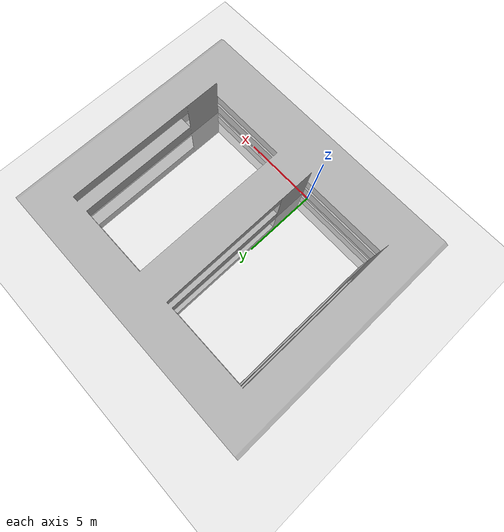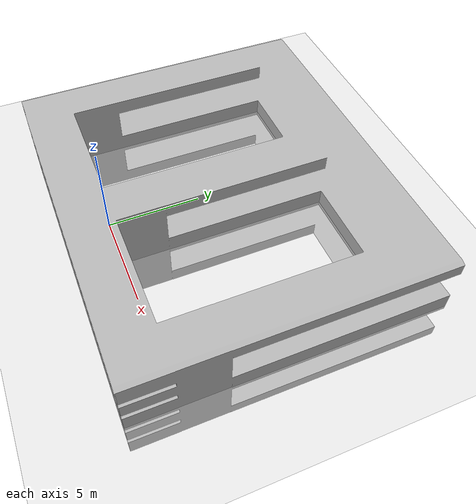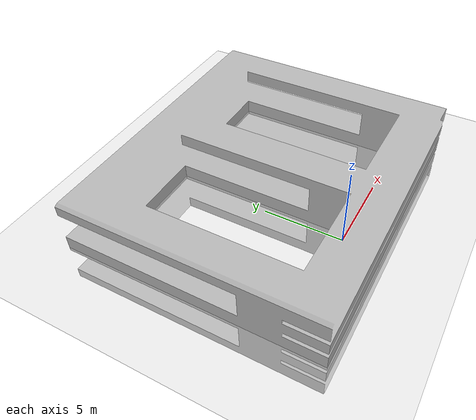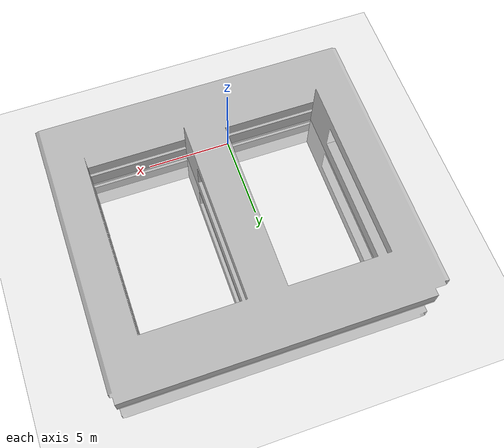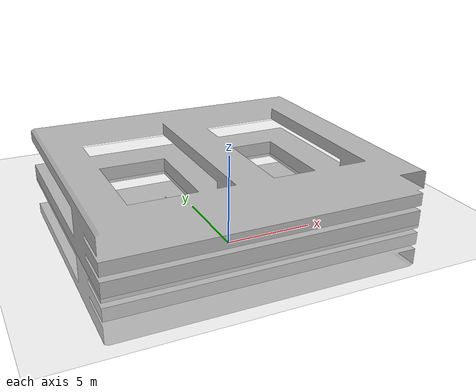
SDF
<?xml version="1.0" ?>
<sdf version="1.4">
  <world name="default">
    <physics type='ode'>
      <gravity>0 0 -9.81</gravity>
      <!-- max step size has to be a multiple of the desired task rate-->
      <max_step_size>0.001</max_step_size>
      <real_time_factor>1</real_time_factor>
    </physics>
    <!-- A global light source -->
    <include>
      <uri>model://sun</uri>
    </include>
    <!-- A ground plane -->
    <include>
      <uri>model://ground_plane</uri>
    </include>
    <include>
      <name>pallet</name>
      <uri>model://pallet770x1000x140mm</uri>
      <pose>1.5 0.0 0.31  0 -1.57 3.14</pose>
    </include>
  </world>
</sdf>

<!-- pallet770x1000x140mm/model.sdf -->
<sdf version="1.4">
	<model name="pallet770x1000x140mm">
		<static>true</static>
		<link name="link">
			<pose>0 0 0.06 0 0 0</pose>
			<collision name="collision">
				<geometry>
					<mesh>
						<uri>model://pallet770x1000x140mm/mesh/pallet.dae</uri>
						<!-- original size = 1.016 x 0.090678 x 0.090678 m -->
						<!-- final size = 0.77 x 1 x 0.14 m -->
						<scale>0.758 11.028 1.5439</scale>
					</mesh>
				</geometry>
                        </collision>
			<visual name="visual">
				<geometry>
					<mesh>
						<uri>model://pallet770x1000x140mm/mesh/pallet.dae</uri>
						<!-- original size = 1.016 x 0.090678 x 0.090678 m -->
						<!-- final size = 0.77 x 1 x 0.14 m -->
						<scale>0.758 11.028 1.5439</scale>
					</mesh>
				</geometry>
			</visual>
		</link>
	</model>
</sdf>
